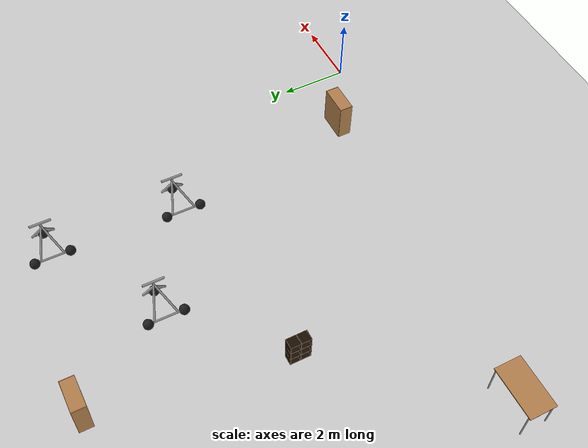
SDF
<sdf version="1.6">
 <world name="default">
  <model name="ground_plane">
   <static>1</static>
   <link name="link">
    <collision name="collision">
     <geometry><plane><normal>0 0 1</normal><size>100 100</size></plane></geometry>
     <surface><friction><ode><mu>100</mu><mu2>50</mu2></ode></friction></surface>
    </collision>
    <visual name="visual">
     <cast_shadows>0</cast_shadows>
     <geometry><plane><normal>0 0 1</normal><size>100 100</size></plane></geometry>
     <material>
      <script><uri>file://media/materials/scripts/gazebo.material</uri><name>Gazebo/Grey</name></script>
     </material>
    </visual>
   </link>
  </model>
  <model name="bookshelf">
   <static>1</static>
   <link name="link">
    <inertial><mass>1</mass></inertial>
    <collision name="back">
     <pose>0 0.005 0.6 0 -0 0</pose>
     <geometry><box><size>0.9 0.01 1.2</size></box></geometry>
    </collision>
    <visual name="visual1">
     <pose>0 0.005 0.6 0 -0 0</pose>
     <geometry><box><size>0.9 0.01 1.2</size></box></geometry>
     <material>
      <script><uri>file://media/materials/scripts/gazebo.material</uri><name>Gazebo/Wood</name></script>
     </material>
    </visual>
    <collision name="left_side">
     <pose>0.45 -0.195 0.6 0 -0 0</pose>
     <geometry><box><size>0.02 0.4 1.2</size></box></geometry>
    </collision>
    <visual name="visual2">
     <pose>0.45 -0.195 0.6 0 -0 0</pose>
     <geometry><box><size>0.02 0.4 1.2</size></box></geometry>
     <material>
      <script><uri>file://media/materials/scripts/gazebo.material</uri><name>Gazebo/Wood</name></script>
     </material>
    </visual>
    <collision name="right_side">
     <pose>-0.45 -0.195 0.6 0 -0 0</pose>
     <geometry><box><size>0.02 0.4 1.2</size></box></geometry>
    </collision>
    <visual name="visual3">
     <pose>-0.45 -0.195 0.6 0 -0 0</pose>
     <geometry><box><size>0.02 0.4 1.2</size></box></geometry>
     <material>
      <script><uri>file://media/materials/scripts/gazebo.material</uri><name>Gazebo/Wood</name></script>
     </material>
    </visual>
    <collision name="bottom">
     <pose>0 -0.195 0.03 0 -0 0</pose>
     <geometry><box><size>0.88 0.4 0.06</size></box></geometry>
    </collision>
    <visual name="visual4">
     <pose>0 -0.195 0.03 0 -0 0</pose>
     <geometry><box><size>0.88 0.4 0.06</size></box></geometry>
     <material>
      <script><uri>file://media/materials/scripts/gazebo.material</uri><name>Gazebo/Wood</name></script>
     </material>
    </visual>
    <collision name="top">
     <pose>0 -0.195 1.19 0 -0 0</pose>
     <geometry><box><size>0.88 0.4 0.02</size></box></geometry>
    </collision>
    <visual name="visual5">
     <pose>0 -0.195 1.19 0 -0 0</pose>
     <geometry><box><size>0.88 0.4 0.02</size></box></geometry>
     <material>
      <script><uri>file://media/materials/scripts/gazebo.material</uri><name>Gazebo/Wood</name></script>
     </material>
    </visual>
    <collision name="low_shelf">
     <pose>0 -0.195 0.43 0 -0 0</pose>
     <geometry><box><size>0.88 0.4 0.02</size></box></geometry>
    </collision>
    <visual name="visual6">
     <pose>0 -0.195 0.43 0 -0 0</pose>
     <geometry><box><size>0.88 0.4 0.02</size></box></geometry>
     <material>
      <script><uri>file://media/materials/scripts/gazebo.material</uri><name>Gazebo/Wood</name></script>
     </material>
    </visual>
    <collision name="high_shelf">
     <pose>0 -0.195 0.8 0 -0 0</pose>
     <geometry><box><size>0.88 0.4 0.02</size></box></geometry>
    </collision>
    <visual name="visual7">
     <pose>0 -0.195 0.8 0 -0 0</pose>
     <geometry><box><size>0.88 0.4 0.02</size></box></geometry>
     <material>
      <script><uri>file://media/materials/scripts/gazebo.material</uri><name>Gazebo/Wood</name></script>
     </material>
    </visual>
   </link>
   <pose>-1.95 1.4 0 0 -0 0</pose>
  </model>
  <model name="table_2">
   <static>1</static>
   <link name="link">
    <collision name="surface">
     <pose>0 0 1 0 -0 0</pose>
     <geometry><box><size>1.5 0.8 0.03</size></box></geometry>
     <surface><friction><ode><mu>0.6</mu><mu2>0.6</mu2></ode></friction></surface>
    </collision>
    <visual name="visual1">
     <pose>0 0 1 0 -0 0</pose>
     <geometry><box><size>1.5 0.8 0.03</size></box></geometry>
     <material>
      <script><uri>file://media/materials/scripts/gazebo.material</uri><name>Gazebo/Wood</name></script>
     </material>
    </visual>
    <collision name="front_left_leg">
     <pose>0.68 0.38 0.5 0 -0 0</pose>
     <geometry><cylinder><radius>0.02</radius><length>1</length></cylinder></geometry>
    </collision>
    <visual name="front_left_leg">
     <pose>0.68 0.38 0.5 0 -0 0</pose>
     <geometry><cylinder><radius>0.02</radius><length>1</length></cylinder></geometry>
     <material>
      <script><uri>file://media/materials/scripts/gazebo.material</uri><name>Gazebo/Grey</name></script>
     </material>
    </visual>
    <collision name="front_right_leg">
     <pose>0.68 -0.38 0.5 0 -0 0</pose>
     <geometry><cylinder><radius>0.02</radius><length>1</length></cylinder></geometry>
    </collision>
    <visual name="front_right_leg">
     <pose>0.68 -0.38 0.5 0 -0 0</pose>
     <geometry><cylinder><radius>0.02</radius><length>1</length></cylinder></geometry>
     <material>
      <script><uri>file://media/materials/scripts/gazebo.material</uri><name>Gazebo/Grey</name></script>
     </material>
    </visual>
    <collision name="back_right_leg">
     <pose>-0.68 -0.38 0.5 0 -0 0</pose>
     <geometry><cylinder><radius>0.02</radius><length>1</length></cylinder></geometry>
    </collision>
    <visual name="back_right_leg">
     <pose>-0.68 -0.38 0.5 0 -0 0</pose>
     <geometry><cylinder><radius>0.02</radius><length>1</length></cylinder></geometry>
     <material>
      <script><uri>file://media/materials/scripts/gazebo.material</uri><name>Gazebo/Grey</name></script>
     </material>
    </visual>
    <collision name="back_left_leg">
     <pose>-0.68 0.38 0.5 0 -0 0</pose>
     <geometry><cylinder><radius>0.02</radius><length>1</length></cylinder></geometry>
    </collision>
    <visual name="back_left_leg">
     <pose>-0.68 0.38 0.5 0 -0 0</pose>
     <geometry><cylinder><radius>0.02</radius><length>1</length></cylinder></geometry>
     <material>
      <script><uri>file://media/materials/scripts/gazebo.material</uri><name>Gazebo/Grey</name></script>
     </material>
    </visual>
   </link>
   <pose>-12.1442 1.69657 0 0 -0 0</pose>
  </model>
  <model name="bookshelf_5">
   <static>1</static>
   <link name="link">
    <inertial><mass>1</mass></inertial>
    <collision name="back">
     <pose>0 0.005 0.6 0 -0 0</pose>
     <geometry><box><size>0.9 0.01 1.2</size></box></geometry>
    </collision>
    <visual name="visual1">
     <pose>0 0.005 0.6 0 -0 0</pose>
     <geometry><box><size>0.9 0.01 1.2</size></box></geometry>
     <material>
      <script><uri>file://media/materials/scripts/gazebo.material</uri><name>Gazebo/Wood</name></script>
     </material>
    </visual>
    <collision name="left_side">
     <pose>0.45 -0.195 0.6 0 -0 0</pose>
     <geometry><box><size>0.02 0.4 1.2</size></box></geometry>
    </collision>
    <visual name="visual2">
     <pose>0.45 -0.195 0.6 0 -0 0</pose>
     <geometry><box><size>0.02 0.4 1.2</size></box></geometry>
     <material>
      <script><uri>file://media/materials/scripts/gazebo.material</uri><name>Gazebo/Wood</name></script>
     </material>
    </visual>
    <collision name="right_side">
     <pose>-0.45 -0.195 0.6 0 -0 0</pose>
     <geometry><box><size>0.02 0.4 1.2</size></box></geometry>
    </collision>
    <visual name="visual3">
     <pose>-0.45 -0.195 0.6 0 -0 0</pose>
     <geometry><box><size>0.02 0.4 1.2</size></box></geometry>
     <material>
      <script><uri>file://media/materials/scripts/gazebo.material</uri><name>Gazebo/Wood</name></script>
     </material>
    </visual>
    <collision name="bottom">
     <pose>0 -0.195 0.03 0 -0 0</pose>
     <geometry><box><size>0.88 0.4 0.06</size></box></geometry>
    </collision>
    <visual name="visual4">
     <pose>0 -0.195 0.03 0 -0 0</pose>
     <geometry><box><size>0.88 0.4 0.06</size></box></geometry>
     <material>
      <script><uri>file://media/materials/scripts/gazebo.material</uri><name>Gazebo/Wood</name></script>
     </material>
    </visual>
    <collision name="top">
     <pose>0 -0.195 1.19 0 -0 0</pose>
     <geometry><box><size>0.88 0.4 0.02</size></box></geometry>
    </collision>
    <visual name="visual5">
     <pose>0 -0.195 1.19 0 -0 0</pose>
     <geometry><box><size>0.88 0.4 0.02</size></box></geometry>
     <material>
      <script><uri>file://media/materials/scripts/gazebo.material</uri><name>Gazebo/Wood</name></script>
     </material>
    </visual>
    <collision name="low_shelf">
     <pose>0 -0.195 0.43 0 -0 0</pose>
     <geometry><box><size>0.88 0.4 0.02</size></box></geometry>
    </collision>
    <visual name="visual6">
     <pose>0 -0.195 0.43 0 -0 0</pose>
     <geometry><box><size>0.88 0.4 0.02</size></box></geometry>
     <material>
      <script><uri>file://media/materials/scripts/gazebo.material</uri><name>Gazebo/Wood</name></script>
     </material>
    </visual>
    <collision name="high_shelf">
     <pose>0 -0.195 0.8 0 -0 0</pose>
     <geometry><box><size>0.88 0.4 0.02</size></box></geometry>
    </collision>
    <visual name="visual7">
     <pose>0 -0.195 0.8 0 -0 0</pose>
     <geometry><box><size>0.88 0.4 0.02</size></box></geometry>
     <material>
      <script><uri>file://media/materials/scripts/gazebo.material</uri><name>Gazebo/Wood</name></script>
     </material>
    </visual>
   </link>
   <pose>-7.5 11.8 0 0 -0 0</pose>
  </model>
  <model name="trisphere_cycle">
   <link name="frame">
    <pose>-0.408559 0 0.385023 0 -0.522021 0</pose>
    <inertial>
     <mass>10</mass>
     <inertia><ixx>0.228</ixx><iyy>0.743521</iyy><izz>0.965521</izz><ixy>0</ixy><ixz>0</ixz><iyz>0</iyz></inertia>
    </inertial>
    <collision name="axle_collision">
     <pose>-0.471335 0 0 1.5708 -0 0</pose>
     <geometry><cylinder><length>1.03923</length><radius>0.03</radius></cylinder></geometry>
    </collision>
    <visual name="axle_visual">
     <pose>-0.471335 0 0 1.5708 -0 0</pose>
     <geometry><cylinder><length>1.03923</length><radius>0.03</radius></cylinder></geometry>
     <material>
      <script><uri>file://media/materials/scripts/gazebo.material</uri><name>Gazebo/Grey</name></script>
     </material>
    </visual>
    <collision name="frame_left_collision">
     <pose>0 0.171552 0 -2.79253 1.57079 3.14159</pose>
     <geometry><cylinder><length>1.00317</length><radius>0.03</radius></cylinder></geometry>
    </collision>
    <visual name="frame_left_visual">
     <pose>0 0.171552 0 -2.79253 1.57079 3.14159</pose>
     <geometry><cylinder><length>1.00317</length><radius>0.03</radius></cylinder></geometry>
     <material>
      <script><uri>file://media/materials/scripts/gazebo.material</uri><name>Gazebo/Grey</name></script>
     </material>
    </visual>
    <collision name="frame_right_collision">
     <pose>0 -0.171552 0 2.79253 1.57079 -3.14159</pose>
     <geometry><cylinder><length>1.00317</length><radius>0.03</radius></cylinder></geometry>
    </collision>
    <visual name="frame_right_visual">
     <pose>0 -0.171552 0 2.79253 1.57079 -3.14159</pose>
     <geometry><cylinder><length>1.00317</length><radius>0.03</radius></cylinder></geometry>
     <material>
      <script><uri>file://media/materials/scripts/gazebo.material</uri><name>Gazebo/Grey</name></script>
     </material>
    </visual>
   </link>
   <link name="fork">
    <pose>0.041441 0 0.385023 0 -0.174533 0</pose>
    <inertial>
     <mass>3</mass>
     <inertia>
      <ixx>0.158203</ixx>
      <iyy>0.0583594</iyy>
      <izz>0.102656</izz>
      <ixy>0</ixy>
      <ixz>0</ixz>
      <iyz>0</iyz>
     </inertia>
    </inertial>
    <collision name="handlebars_collision">
     <pose>0 0 0.397748 1.5708 -0 0</pose>
     <geometry><cylinder><length>0.636396</length><radius>0.0375</radius></cylinder></geometry>
    </collision>
    <visual name="handlebars_visual">
     <pose>0 0 0.397748 1.5708 -0 0</pose>
     <geometry><cylinder><length>0.636396</length><radius>0.0375</radius></cylinder></geometry>
     <material>
      <script><uri>file://media/materials/scripts/gazebo.material</uri><name>Gazebo/Grey</name></script>
     </material>
    </visual>
    <collision name="headtube_collision">
     <pose>0 0 0.238649 0 -0 0</pose>
     <geometry><cylinder><length>0.318198</length><radius>0.0375</radius></cylinder></geometry>
    </collision>
    <visual name="headtube_visual">
     <pose>0 0 0.238649 0 -0 0</pose>
     <geometry><cylinder><length>0.318198</length><radius>0.0375</radius></cylinder></geometry>
     <material>
      <script><uri>file://media/materials/scripts/gazebo.material</uri><name>Gazebo/Grey</name></script>
     </material>
    </visual>
    <collision name="spindle_collision">
     <pose>0 0 -0.238649 1.5708 -0 0</pose>
     <geometry><cylinder><length>0.636396</length><radius>0.015</radius></cylinder></geometry>
    </collision>
    <visual name="spindle_visual">
     <pose>0 0 -0.238649 1.5708 -0 0</pose>
     <geometry><cylinder><length>0.636396</length><radius>0.015</radius></cylinder></geometry>
     <material>
      <script><uri>file://media/materials/scripts/gazebo.material</uri><name>Gazebo/Grey</name></script>
     </material>
    </visual>
    <collision name="fork_left_collision">
     <pose>0 0.159099 -0.07955 0.785398 -0 0</pose>
     <geometry><cylinder><length>0.45</length><radius>0.0375</radius></cylinder></geometry>
    </collision>
    <visual name="fork_left_visual">
     <pose>0 0.159099 -0.07955 0.785398 -0 0</pose>
     <geometry><cylinder><length>0.45</length><radius>0.0375</radius></cylinder></geometry>
     <material>
      <script><uri>file://media/materials/scripts/gazebo.material</uri><name>Gazebo/Grey</name></script>
     </material>
    </visual>
    <collision name="fork_right_collision">
     <pose>0 -0.159099 -0.07955 -0.785398 0 0</pose>
     <geometry><cylinder><length>0.45</length><radius>0.0375</radius></cylinder></geometry>
    </collision>
    <visual name="fork_right_visual">
     <pose>0 -0.159099 -0.07955 -0.785398 0 0</pose>
     <geometry><cylinder><length>0.45</length><radius>0.0375</radius></cylinder></geometry>
     <material>
      <script><uri>file://media/materials/scripts/gazebo.material</uri><name>Gazebo/Grey</name></script>
     </material>
    </visual>
   </link>
   <link name="wheel_front">
    <pose>0.082882 0 0.15 0 -0 0</pose>
    <inertial>
     <mass>0.5</mass>
     <inertia><ixx>0.0045</ixx><iyy>0.0045</iyy><izz>0.0045</izz><ixy>0</ixy><ixz>0</ixz><iyz>0</iyz></inertia>
    </inertial>
    <collision name="collision">
     <geometry><sphere><radius>0.15</radius></sphere></geometry>
     <surface><contact><ode><kp>1e+08</kp><kd>1</kd><min_depth>0.0005</min_depth></ode></contact></surface>
    </collision>
    <visual name="visual">
     <geometry><sphere><radius>0.15</radius></sphere></geometry>
     <material>
      <script><uri>file://media/materials/scripts/gazebo.material</uri><name>Gazebo/Black</name></script>
     </material>
    </visual>
   </link>
   <joint name="wheel_front_steer" type="revolute">
    <parent>frame</parent>
    <child>fork</child>
    <axis>
     <xyz>0 0 1</xyz>
     <limit><lower>-0.959931</lower><upper>0.959931</upper></limit>
     <use_parent_model_frame>0</use_parent_model_frame>
     <dynamics><spring_reference>0</spring_reference><spring_stiffness>0</spring_stiffness></dynamics>
    </axis>
   </joint>
   <joint name="wheel_front_spin" type="revolute">
    <parent>fork</parent>
    <child>wheel_front</child>
    <axis>
     <xyz>0 1 0</xyz>
     <use_parent_model_frame>0</use_parent_model_frame>
     <limit><lower>-1e+16</lower><upper>1e+16</upper></limit>
     <dynamics><spring_reference>0</spring_reference><spring_stiffness>0</spring_stiffness></dynamics>
    </axis>
   </joint>
   <link name="wheel_rear_left">
    <pose>-0.817118 0.519615 0.15 0 -0 0</pose>
    <inertial>
     <mass>0.5</mass>
     <inertia><ixx>0.0045</ixx><iyy>0.0045</iyy><izz>0.0045</izz><ixy>0</ixy><ixz>0</ixz><iyz>0</iyz></inertia>
    </inertial>
    <collision name="collision">
     <geometry><sphere><radius>0.15</radius></sphere></geometry>
     <surface><contact><ode><kp>1e+08</kp><kd>1</kd><min_depth>0.0005</min_depth></ode></contact></surface>
    </collision>
    <visual name="visual">
     <geometry><sphere><radius>0.15</radius></sphere></geometry>
     <material>
      <script><uri>file://media/materials/scripts/gazebo.material</uri><name>Gazebo/Black</name></script>
     </material>
    </visual>
   </link>
   <joint name="wheel_rear_left_spin" type="revolute">
    <parent>frame</parent>
    <child>wheel_rear_left</child>
    <axis>
     <xyz>0 1 0</xyz>
     <use_parent_model_frame>0</use_parent_model_frame>
     <limit><lower>-1e+16</lower><upper>1e+16</upper></limit>
     <dynamics><spring_reference>0</spring_reference><spring_stiffness>0</spring_stiffness></dynamics>
    </axis>
   </joint>
   <link name="wheel_rear_right">
    <pose>-0.817118 -0.519615 0.15 0 -0 0</pose>
    <inertial>
     <mass>0.5</mass>
     <inertia><ixx>0.0045</ixx><iyy>0.0045</iyy><izz>0.0045</izz><ixy>0</ixy><ixz>0</ixz><iyz>0</iyz></inertia>
    </inertial>
    <collision name="collision">
     <geometry><sphere><radius>0.15</radius></sphere></geometry>
     <surface><contact><ode><kp>1e+08</kp><kd>1</kd><min_depth>0.0005</min_depth></ode></contact></surface>
    </collision>
    <visual name="visual">
     <geometry><sphere><radius>0.15</radius></sphere></geometry>
     <material>
      <script><uri>file://media/materials/scripts/gazebo.material</uri><name>Gazebo/Black</name></script>
     </material>
    </visual>
   </link>
   <joint name="wheel_rear_right_spin" type="revolute">
    <parent>frame</parent>
    <child>wheel_rear_right</child>
    <axis>
     <xyz>0 1 0</xyz>
     <use_parent_model_frame>0</use_parent_model_frame>
     <limit><lower>-1e+16</lower><upper>1e+16</upper></limit>
     <dynamics><spring_reference>0</spring_reference><spring_stiffness>0</spring_stiffness></dynamics>
    </axis>
   </joint>
   <pose>-1.99975 10.7733 -0.000501 -0 1e-06 -0.006622</pose>
  </model>
  <model name="trisphere_cycle_0">
   <link name="frame">
    <pose>-0.408559 0 0.385023 0 -0.522021 0</pose>
    <inertial>
     <mass>10</mass>
     <inertia><ixx>0.228</ixx><iyy>0.743521</iyy><izz>0.965521</izz><ixy>0</ixy><ixz>0</ixz><iyz>0</iyz></inertia>
    </inertial>
    <collision name="axle_collision">
     <pose>-0.471335 0 0 1.5708 -0 0</pose>
     <geometry><cylinder><length>1.03923</length><radius>0.03</radius></cylinder></geometry>
    </collision>
    <visual name="axle_visual">
     <pose>-0.471335 0 0 1.5708 -0 0</pose>
     <geometry><cylinder><length>1.03923</length><radius>0.03</radius></cylinder></geometry>
     <material>
      <script><uri>file://media/materials/scripts/gazebo.material</uri><name>Gazebo/Grey</name></script>
     </material>
    </visual>
    <collision name="frame_left_collision">
     <pose>0 0.171552 0 -2.79253 1.57079 3.14159</pose>
     <geometry><cylinder><length>1.00317</length><radius>0.03</radius></cylinder></geometry>
    </collision>
    <visual name="frame_left_visual">
     <pose>0 0.171552 0 -2.79253 1.57079 3.14159</pose>
     <geometry><cylinder><length>1.00317</length><radius>0.03</radius></cylinder></geometry>
     <material>
      <script><uri>file://media/materials/scripts/gazebo.material</uri><name>Gazebo/Grey</name></script>
     </material>
    </visual>
    <collision name="frame_right_collision">
     <pose>0 -0.171552 0 2.79253 1.57079 -3.14159</pose>
     <geometry><cylinder><length>1.00317</length><radius>0.03</radius></cylinder></geometry>
    </collision>
    <visual name="frame_right_visual">
     <pose>0 -0.171552 0 2.79253 1.57079 -3.14159</pose>
     <geometry><cylinder><length>1.00317</length><radius>0.03</radius></cylinder></geometry>
     <material>
      <script><uri>file://media/materials/scripts/gazebo.material</uri><name>Gazebo/Grey</name></script>
     </material>
    </visual>
   </link>
   <link name="fork">
    <pose>0.041441 0 0.385023 0 -0.174533 0</pose>
    <inertial>
     <mass>3</mass>
     <inertia>
      <ixx>0.158203</ixx>
      <iyy>0.0583594</iyy>
      <izz>0.102656</izz>
      <ixy>0</ixy>
      <ixz>0</ixz>
      <iyz>0</iyz>
     </inertia>
    </inertial>
    <collision name="handlebars_collision">
     <pose>0 0 0.397748 1.5708 -0 0</pose>
     <geometry><cylinder><length>0.636396</length><radius>0.0375</radius></cylinder></geometry>
    </collision>
    <visual name="handlebars_visual">
     <pose>0 0 0.397748 1.5708 -0 0</pose>
     <geometry><cylinder><length>0.636396</length><radius>0.0375</radius></cylinder></geometry>
     <material>
      <script><uri>file://media/materials/scripts/gazebo.material</uri><name>Gazebo/Grey</name></script>
     </material>
    </visual>
    <collision name="headtube_collision">
     <pose>0 0 0.238649 0 -0 0</pose>
     <geometry><cylinder><length>0.318198</length><radius>0.0375</radius></cylinder></geometry>
    </collision>
    <visual name="headtube_visual">
     <pose>0 0 0.238649 0 -0 0</pose>
     <geometry><cylinder><length>0.318198</length><radius>0.0375</radius></cylinder></geometry>
     <material>
      <script><uri>file://media/materials/scripts/gazebo.material</uri><name>Gazebo/Grey</name></script>
     </material>
    </visual>
    <collision name="spindle_collision">
     <pose>0 0 -0.238649 1.5708 -0 0</pose>
     <geometry><cylinder><length>0.636396</length><radius>0.015</radius></cylinder></geometry>
    </collision>
    <visual name="spindle_visual">
     <pose>0 0 -0.238649 1.5708 -0 0</pose>
     <geometry><cylinder><length>0.636396</length><radius>0.015</radius></cylinder></geometry>
     <material>
      <script><uri>file://media/materials/scripts/gazebo.material</uri><name>Gazebo/Grey</name></script>
     </material>
    </visual>
    <collision name="fork_left_collision">
     <pose>0 0.159099 -0.07955 0.785398 -0 0</pose>
     <geometry><cylinder><length>0.45</length><radius>0.0375</radius></cylinder></geometry>
    </collision>
    <visual name="fork_left_visual">
     <pose>0 0.159099 -0.07955 0.785398 -0 0</pose>
     <geometry><cylinder><length>0.45</length><radius>0.0375</radius></cylinder></geometry>
     <material>
      <script><uri>file://media/materials/scripts/gazebo.material</uri><name>Gazebo/Grey</name></script>
     </material>
    </visual>
    <collision name="fork_right_collision">
     <pose>0 -0.159099 -0.07955 -0.785398 0 0</pose>
     <geometry><cylinder><length>0.45</length><radius>0.0375</radius></cylinder></geometry>
    </collision>
    <visual name="fork_right_visual">
     <pose>0 -0.159099 -0.07955 -0.785398 0 0</pose>
     <geometry><cylinder><length>0.45</length><radius>0.0375</radius></cylinder></geometry>
     <material>
      <script><uri>file://media/materials/scripts/gazebo.material</uri><name>Gazebo/Grey</name></script>
     </material>
    </visual>
   </link>
   <link name="wheel_front">
    <pose>0.082882 0 0.15 0 -0 0</pose>
    <inertial>
     <mass>0.5</mass>
     <inertia><ixx>0.0045</ixx><iyy>0.0045</iyy><izz>0.0045</izz><ixy>0</ixy><ixz>0</ixz><iyz>0</iyz></inertia>
    </inertial>
    <collision name="collision">
     <geometry><sphere><radius>0.15</radius></sphere></geometry>
     <surface><contact><ode><kp>1e+08</kp><kd>1</kd><min_depth>0.0005</min_depth></ode></contact></surface>
    </collision>
    <visual name="visual">
     <geometry><sphere><radius>0.15</radius></sphere></geometry>
     <material>
      <script><uri>file://media/materials/scripts/gazebo.material</uri><name>Gazebo/Black</name></script>
     </material>
    </visual>
   </link>
   <joint name="wheel_front_steer" type="revolute">
    <parent>frame</parent>
    <child>fork</child>
    <axis>
     <xyz>0 0 1</xyz>
     <limit><lower>-0.959931</lower><upper>0.959931</upper></limit>
     <use_parent_model_frame>0</use_parent_model_frame>
     <dynamics><spring_reference>0</spring_reference><spring_stiffness>0</spring_stiffness></dynamics>
    </axis>
   </joint>
   <joint name="wheel_front_spin" type="revolute">
    <parent>fork</parent>
    <child>wheel_front</child>
    <axis>
     <xyz>0 1 0</xyz>
     <use_parent_model_frame>0</use_parent_model_frame>
     <limit><lower>-1e+16</lower><upper>1e+16</upper></limit>
     <dynamics><spring_reference>0</spring_reference><spring_stiffness>0</spring_stiffness></dynamics>
    </axis>
   </joint>
   <link name="wheel_rear_left">
    <pose>-0.817118 0.519615 0.15 0 -0 0</pose>
    <inertial>
     <mass>0.5</mass>
     <inertia><ixx>0.0045</ixx><iyy>0.0045</iyy><izz>0.0045</izz><ixy>0</ixy><ixz>0</ixz><iyz>0</iyz></inertia>
    </inertial>
    <collision name="collision">
     <geometry><sphere><radius>0.15</radius></sphere></geometry>
     <surface><contact><ode><kp>1e+08</kp><kd>1</kd><min_depth>0.0005</min_depth></ode></contact></surface>
    </collision>
    <visual name="visual">
     <geometry><sphere><radius>0.15</radius></sphere></geometry>
     <material>
      <script><uri>file://media/materials/scripts/gazebo.material</uri><name>Gazebo/Black</name></script>
     </material>
    </visual>
   </link>
   <joint name="wheel_rear_left_spin" type="revolute">
    <parent>frame</parent>
    <child>wheel_rear_left</child>
    <axis>
     <xyz>0 1 0</xyz>
     <use_parent_model_frame>0</use_parent_model_frame>
     <limit><lower>-1e+16</lower><upper>1e+16</upper></limit>
     <dynamics><spring_reference>0</spring_reference><spring_stiffness>0</spring_stiffness></dynamics>
    </axis>
   </joint>
   <link name="wheel_rear_right">
    <pose>-0.817118 -0.519615 0.15 0 -0 0</pose>
    <inertial>
     <mass>0.5</mass>
     <inertia><ixx>0.0045</ixx><iyy>0.0045</iyy><izz>0.0045</izz><ixy>0</ixy><ixz>0</ixz><iyz>0</iyz></inertia>
    </inertial>
    <collision name="collision">
     <geometry><sphere><radius>0.15</radius></sphere></geometry>
     <surface><contact><ode><kp>1e+08</kp><kd>1</kd><min_depth>0.0005</min_depth></ode></contact></surface>
    </collision>
    <visual name="visual">
     <geometry><sphere><radius>0.15</radius></sphere></geometry>
     <material>
      <script><uri>file://media/materials/scripts/gazebo.material</uri><name>Gazebo/Black</name></script>
     </material>
    </visual>
   </link>
   <joint name="wheel_rear_right_spin" type="revolute">
    <parent>frame</parent>
    <child>wheel_rear_right</child>
    <axis>
     <xyz>0 1 0</xyz>
     <use_parent_model_frame>0</use_parent_model_frame>
     <limit><lower>-1e+16</lower><upper>1e+16</upper></limit>
     <dynamics><spring_reference>0</spring_reference><spring_stiffness>0</spring_stiffness></dynamics>
    </axis>
   </joint>
   <pose>-2.15617 6.86372 -0.000501 -0 1e-06 -0.006959</pose>
  </model>
  <model name="trisphere_cycle_1">
   <link name="frame">
    <pose>-0.408559 0 0.385023 0 -0.522021 0</pose>
    <inertial>
     <mass>10</mass>
     <inertia><ixx>0.228</ixx><iyy>0.743521</iyy><izz>0.965521</izz><ixy>0</ixy><ixz>0</ixz><iyz>0</iyz></inertia>
    </inertial>
    <collision name="axle_collision">
     <pose>-0.471335 0 0 1.5708 -0 0</pose>
     <geometry><cylinder><length>1.03923</length><radius>0.03</radius></cylinder></geometry>
    </collision>
    <visual name="axle_visual">
     <pose>-0.471335 0 0 1.5708 -0 0</pose>
     <geometry><cylinder><length>1.03923</length><radius>0.03</radius></cylinder></geometry>
     <material>
      <script><uri>file://media/materials/scripts/gazebo.material</uri><name>Gazebo/Grey</name></script>
     </material>
    </visual>
    <collision name="frame_left_collision">
     <pose>0 0.171552 0 -2.79253 1.57079 3.14159</pose>
     <geometry><cylinder><length>1.00317</length><radius>0.03</radius></cylinder></geometry>
    </collision>
    <visual name="frame_left_visual">
     <pose>0 0.171552 0 -2.79253 1.57079 3.14159</pose>
     <geometry><cylinder><length>1.00317</length><radius>0.03</radius></cylinder></geometry>
     <material>
      <script><uri>file://media/materials/scripts/gazebo.material</uri><name>Gazebo/Grey</name></script>
     </material>
    </visual>
    <collision name="frame_right_collision">
     <pose>0 -0.171552 0 2.79253 1.57079 -3.14159</pose>
     <geometry><cylinder><length>1.00317</length><radius>0.03</radius></cylinder></geometry>
    </collision>
    <visual name="frame_right_visual">
     <pose>0 -0.171552 0 2.79253 1.57079 -3.14159</pose>
     <geometry><cylinder><length>1.00317</length><radius>0.03</radius></cylinder></geometry>
     <material>
      <script><uri>file://media/materials/scripts/gazebo.material</uri><name>Gazebo/Grey</name></script>
     </material>
    </visual>
   </link>
   <link name="fork">
    <pose>0.041441 0 0.385023 0 -0.174533 0</pose>
    <inertial>
     <mass>3</mass>
     <inertia>
      <ixx>0.158203</ixx>
      <iyy>0.0583594</iyy>
      <izz>0.102656</izz>
      <ixy>0</ixy>
      <ixz>0</ixz>
      <iyz>0</iyz>
     </inertia>
    </inertial>
    <collision name="handlebars_collision">
     <pose>0 0 0.397748 1.5708 -0 0</pose>
     <geometry><cylinder><length>0.636396</length><radius>0.0375</radius></cylinder></geometry>
    </collision>
    <visual name="handlebars_visual">
     <pose>0 0 0.397748 1.5708 -0 0</pose>
     <geometry><cylinder><length>0.636396</length><radius>0.0375</radius></cylinder></geometry>
     <material>
      <script><uri>file://media/materials/scripts/gazebo.material</uri><name>Gazebo/Grey</name></script>
     </material>
    </visual>
    <collision name="headtube_collision">
     <pose>0 0 0.238649 0 -0 0</pose>
     <geometry><cylinder><length>0.318198</length><radius>0.0375</radius></cylinder></geometry>
    </collision>
    <visual name="headtube_visual">
     <pose>0 0 0.238649 0 -0 0</pose>
     <geometry><cylinder><length>0.318198</length><radius>0.0375</radius></cylinder></geometry>
     <material>
      <script><uri>file://media/materials/scripts/gazebo.material</uri><name>Gazebo/Grey</name></script>
     </material>
    </visual>
    <collision name="spindle_collision">
     <pose>0 0 -0.238649 1.5708 -0 0</pose>
     <geometry><cylinder><length>0.636396</length><radius>0.015</radius></cylinder></geometry>
    </collision>
    <visual name="spindle_visual">
     <pose>0 0 -0.238649 1.5708 -0 0</pose>
     <geometry><cylinder><length>0.636396</length><radius>0.015</radius></cylinder></geometry>
     <material>
      <script><uri>file://media/materials/scripts/gazebo.material</uri><name>Gazebo/Grey</name></script>
     </material>
    </visual>
    <collision name="fork_left_collision">
     <pose>0 0.159099 -0.07955 0.785398 -0 0</pose>
     <geometry><cylinder><length>0.45</length><radius>0.0375</radius></cylinder></geometry>
    </collision>
    <visual name="fork_left_visual">
     <pose>0 0.159099 -0.07955 0.785398 -0 0</pose>
     <geometry><cylinder><length>0.45</length><radius>0.0375</radius></cylinder></geometry>
     <material>
      <script><uri>file://media/materials/scripts/gazebo.material</uri><name>Gazebo/Grey</name></script>
     </material>
    </visual>
    <collision name="fork_right_collision">
     <pose>0 -0.159099 -0.07955 -0.785398 0 0</pose>
     <geometry><cylinder><length>0.45</length><radius>0.0375</radius></cylinder></geometry>
    </collision>
    <visual name="fork_right_visual">
     <pose>0 -0.159099 -0.07955 -0.785398 0 0</pose>
     <geometry><cylinder><length>0.45</length><radius>0.0375</radius></cylinder></geometry>
     <material>
      <script><uri>file://media/materials/scripts/gazebo.material</uri><name>Gazebo/Grey</name></script>
     </material>
    </visual>
   </link>
   <link name="wheel_front">
    <pose>0.082882 0 0.15 0 -0 0</pose>
    <inertial>
     <mass>0.5</mass>
     <inertia><ixx>0.0045</ixx><iyy>0.0045</iyy><izz>0.0045</izz><ixy>0</ixy><ixz>0</ixz><iyz>0</iyz></inertia>
    </inertial>
    <collision name="collision">
     <geometry><sphere><radius>0.15</radius></sphere></geometry>
     <surface><contact><ode><kp>1e+08</kp><kd>1</kd><min_depth>0.0005</min_depth></ode></contact></surface>
    </collision>
    <visual name="visual">
     <geometry><sphere><radius>0.15</radius></sphere></geometry>
     <material>
      <script><uri>file://media/materials/scripts/gazebo.material</uri><name>Gazebo/Black</name></script>
     </material>
    </visual>
   </link>
   <joint name="wheel_front_steer" type="revolute">
    <parent>frame</parent>
    <child>fork</child>
    <axis>
     <xyz>0 0 1</xyz>
     <limit><lower>-0.959931</lower><upper>0.959931</upper></limit>
     <use_parent_model_frame>0</use_parent_model_frame>
     <dynamics><spring_reference>0</spring_reference><spring_stiffness>0</spring_stiffness></dynamics>
    </axis>
   </joint>
   <joint name="wheel_front_spin" type="revolute">
    <parent>fork</parent>
    <child>wheel_front</child>
    <axis>
     <xyz>0 1 0</xyz>
     <use_parent_model_frame>0</use_parent_model_frame>
     <limit><lower>-1e+16</lower><upper>1e+16</upper></limit>
     <dynamics><spring_reference>0</spring_reference><spring_stiffness>0</spring_stiffness></dynamics>
    </axis>
   </joint>
   <link name="wheel_rear_left">
    <pose>-0.817118 0.519615 0.15 0 -0 0</pose>
    <inertial>
     <mass>0.5</mass>
     <inertia><ixx>0.0045</ixx><iyy>0.0045</iyy><izz>0.0045</izz><ixy>0</ixy><ixz>0</ixz><iyz>0</iyz></inertia>
    </inertial>
    <collision name="collision">
     <geometry><sphere><radius>0.15</radius></sphere></geometry>
     <surface><contact><ode><kp>1e+08</kp><kd>1</kd><min_depth>0.0005</min_depth></ode></contact></surface>
    </collision>
    <visual name="visual">
     <geometry><sphere><radius>0.15</radius></sphere></geometry>
     <material>
      <script><uri>file://media/materials/scripts/gazebo.material</uri><name>Gazebo/Black</name></script>
     </material>
    </visual>
   </link>
   <joint name="wheel_rear_left_spin" type="revolute">
    <parent>frame</parent>
    <child>wheel_rear_left</child>
    <axis>
     <xyz>0 1 0</xyz>
     <use_parent_model_frame>0</use_parent_model_frame>
     <limit><lower>-1e+16</lower><upper>1e+16</upper></limit>
     <dynamics><spring_reference>0</spring_reference><spring_stiffness>0</spring_stiffness></dynamics>
    </axis>
   </joint>
   <link name="wheel_rear_right">
    <pose>-0.817118 -0.519615 0.15 0 -0 0</pose>
    <inertial>
     <mass>0.5</mass>
     <inertia><ixx>0.0045</ixx><iyy>0.0045</iyy><izz>0.0045</izz><ixy>0</ixy><ixz>0</ixz><iyz>0</iyz></inertia>
    </inertial>
    <collision name="collision">
     <geometry><sphere><radius>0.15</radius></sphere></geometry>
     <surface><contact><ode><kp>1e+08</kp><kd>1</kd><min_depth>0.0005</min_depth></ode></contact></surface>
    </collision>
    <visual name="visual">
     <geometry><sphere><radius>0.15</radius></sphere></geometry>
     <material>
      <script><uri>file://media/materials/scripts/gazebo.material</uri><name>Gazebo/Black</name></script>
     </material>
    </visual>
   </link>
   <joint name="wheel_rear_right_spin" type="revolute">
    <parent>frame</parent>
    <child>wheel_rear_right</child>
    <axis>
     <xyz>0 1 0</xyz>
     <use_parent_model_frame>0</use_parent_model_frame>
     <limit><lower>-1e+16</lower><upper>1e+16</upper></limit>
     <dynamics><spring_reference>0</spring_reference><spring_stiffness>0</spring_stiffness></dynamics>
    </axis>
   </joint>
   <pose>-5.17402 8.64975 -0.000501 0 1e-06 -0.006926</pose>
  </model>
  <model name="6_Cube_StorageE_0">
   <link name="Wall_0">
    <pose>0 0 0.01 0 -0 0</pose>
    <inertial>
     <mass>1.6201</mass>
     <inertia><ixx>0.0119</ixx><iyy>0.0631</iyy><izz>0.0513</izz><ixy>0</ixy><ixz>0</ixz><iyz>0</iyz></inertia>
    </inertial>
    <collision name="Wall_0_Collision"><geometry><box><size>0.616 0.296 0.02</size></box></geometry></collision>
    <visual name="Wall_0_Visual">
     <geometry><box><size>0.616 0.296 0.02</size></box></geometry>
     <material>
      <script><uri>file://media/materials/scripts/gazebo.material</uri><name>Gazebo/Grey</name></script>
      <ambient>0.105882 0.0509804 0 1</ambient>
     </material>
    </visual>
   </link>
   <joint name="0_2" type="fixed">
    <pose>-0.308 0 0 0 -0 0</pose>
    <parent>Wall_2</parent>
    <child>Wall_0</child>
    <axis>
     <xyz>1 0 0</xyz>
     <use_parent_model_frame>0</use_parent_model_frame>
     <limit><lower>-1e+16</lower><upper>1e+16</upper></limit>
    </axis>
   </joint>
   <joint name="0_12" type="fixed">
    <parent>Wall_12</parent>
    <child>Wall_0</child>
    <axis>
     <xyz>0 0 1</xyz>
     <use_parent_model_frame>0</use_parent_model_frame>
     <limit><lower>-1e+16</lower><upper>1e+16</upper></limit>
    </axis>
   </joint>
   <joint name="0_4" type="fixed">
    <pose>0.308 0 0 0 -0 0</pose>
    <parent>Wall_4</parent>
    <child>Wall_0</child>
    <axis>
     <xyz>1 0 0</xyz>
     <use_parent_model_frame>0</use_parent_model_frame>
     <limit><lower>-1e+16</lower><upper>1e+16</upper></limit>
    </axis>
   </joint>
   <link name="Wall_10">
    <pose>0 0 0.61 0 -0 0</pose>
    <inertial>
     <mass>1.6201</mass>
     <inertia><ixx>0.0119</ixx><iyy>0.0631</iyy><izz>0.0513</izz><ixy>0</ixy><ixz>0</ixz><iyz>0</iyz></inertia>
    </inertial>
    <collision name="Wall_10_Collision"><geometry><box><size>0.616 0.296 0.02</size></box></geometry></collision>
    <visual name="Wall_10_Visual">
     <geometry><box><size>0.616 0.296 0.02</size></box></geometry>
     <material>
      <script><uri>file://media/materials/scripts/gazebo.material</uri><name>Gazebo/Grey</name></script>
      <ambient>0.105882 0.0509804 0 1</ambient>
     </material>
    </visual>
   </link>
   <joint name="10_2" type="fixed">
    <pose>-0.308 0 0 0 -0 0</pose>
    <parent>Wall_2</parent>
    <child>Wall_10</child>
    <axis>
     <xyz>1 0 0</xyz>
     <use_parent_model_frame>0</use_parent_model_frame>
     <limit><lower>-1e+16</lower><upper>1e+16</upper></limit>
    </axis>
   </joint>
   <joint name="10_12" type="fixed">
    <parent>Wall_12</parent>
    <child>Wall_10</child>
    <axis>
     <xyz>0 0 1</xyz>
     <use_parent_model_frame>0</use_parent_model_frame>
     <limit><lower>-1e+16</lower><upper>1e+16</upper></limit>
    </axis>
   </joint>
   <joint name="10_4" type="fixed">
    <pose>0.308 0 0 0 -0 0</pose>
    <parent>Wall_4</parent>
    <child>Wall_10</child>
    <axis>
     <xyz>1 0 0</xyz>
     <use_parent_model_frame>0</use_parent_model_frame>
     <limit><lower>-1e+16</lower><upper>1e+16</upper></limit>
    </axis>
   </joint>
   <link name="Wall_12">
    <pose>0 0 0.4575 0 -0 0</pose>
    <inertial>
     <mass>2.4065</mass>
     <inertia><ixx>0.0177</ixx><iyy>0.1855</iyy><izz>0.168</izz><ixy>0</ixy><ixz>0</ixz><iyz>0</iyz></inertia>
    </inertial>
    <collision name="Wall_12_Collision"><geometry><box><size>0.02 0.296 0.915</size></box></geometry></collision>
    <visual name="Wall_12_Visual">
     <geometry><box><size>0.02 0.296 0.915</size></box></geometry>
     <material>
      <script><uri>file://media/materials/scripts/gazebo.material</uri><name>Gazebo/Grey</name></script>
      <ambient>0.105882 0.0509804 0 1</ambient>
     </material>
    </visual>
   </link>
   <link name="Wall_2">
    <pose>-0.298 0 0.4575 0 -0 0</pose>
    <inertial>
     <mass>2.4065</mass>
     <inertia><ixx>0.0177</ixx><iyy>0.1855</iyy><izz>0.168</izz><ixy>0</ixy><ixz>0</ixz><iyz>0</iyz></inertia>
    </inertial>
    <collision name="Wall_2_Collision"><geometry><box><size>0.02 0.296 0.915</size></box></geometry></collision>
    <visual name="Wall_2_Visual">
     <geometry><box><size>0.02 0.296 0.915</size></box></geometry>
     <material>
      <script><uri>file://media/materials/scripts/gazebo.material</uri><name>Gazebo/Grey</name></script>
      <ambient>0.105882 0.0509804 0 1</ambient>
     </material>
    </visual>
   </link>
   <link name="Wall_4">
    <pose>0.298 0 0.4575 0 -0 0</pose>
    <inertial>
     <mass>2.4065</mass>
     <inertia><ixx>0.0177</ixx><iyy>0.1855</iyy><izz>0.168</izz><ixy>0</ixy><ixz>0</ixz><iyz>0</iyz></inertia>
    </inertial>
    <collision name="Wall_4_Collision"><geometry><box><size>0.02 0.296 0.915</size></box></geometry></collision>
    <visual name="Wall_4_Visual">
     <geometry><box><size>0.02 0.296 0.915</size></box></geometry>
     <material>
      <script><uri>file://media/materials/scripts/gazebo.material</uri><name>Gazebo/Grey</name></script>
      <ambient>0.105882 0.0509804 0 1</ambient>
     </material>
    </visual>
   </link>
   <link name="Wall_6">
    <pose>0 0 0.905 0 -0 0</pose>
    <inertial>
     <mass>1.6201</mass>
     <inertia><ixx>0.0119</ixx><iyy>0.0631</iyy><izz>0.0513</izz><ixy>0</ixy><ixz>0</ixz><iyz>0</iyz></inertia>
    </inertial>
    <collision name="Wall_6_Collision"><geometry><box><size>0.616 0.296 0.02</size></box></geometry></collision>
    <visual name="Wall_6_Visual">
     <geometry><box><size>0.616 0.296 0.02</size></box></geometry>
     <material>
      <script><uri>file://media/materials/scripts/gazebo.material</uri><name>Gazebo/Grey</name></script>
      <ambient>0.105882 0.0509804 0 1</ambient>
     </material>
    </visual>
   </link>
   <joint name="6_2" type="fixed">
    <pose>-0.308 0 0 0 -0 0</pose>
    <parent>Wall_2</parent>
    <child>Wall_6</child>
    <axis>
     <xyz>2 0 0</xyz>
     <use_parent_model_frame>0</use_parent_model_frame>
     <limit><lower>-1e+16</lower><upper>1e+16</upper></limit>
    </axis>
   </joint>
   <joint name="6_12" type="fixed">
    <parent>Wall_12</parent>
    <child>Wall_6</child>
    <axis>
     <xyz>0 0 1</xyz>
     <use_parent_model_frame>0</use_parent_model_frame>
     <limit><lower>-1e+16</lower><upper>1e+16</upper></limit>
    </axis>
   </joint>
   <joint name="6_4" type="fixed">
    <pose>0.308 0 0 0 -0 0</pose>
    <parent>Wall_4</parent>
    <child>Wall_6</child>
    <axis>
     <xyz>1 0 0</xyz>
     <use_parent_model_frame>0</use_parent_model_frame>
     <limit><lower>-1e+16</lower><upper>1e+16</upper></limit>
    </axis>
   </joint>
   <link name="Wall_8">
    <pose>0 0 0.305 0 -0 0</pose>
    <inertial>
     <mass>1.6201</mass>
     <inertia><ixx>0.0119</ixx><iyy>0.0631</iyy><izz>0.0513</izz><ixy>0</ixy><ixz>0</ixz><iyz>0</iyz></inertia>
    </inertial>
    <collision name="Wall_8_Collision"><geometry><box><size>0.616 0.296 0.02</size></box></geometry></collision>
    <visual name="Wall_8_Visual">
     <geometry><box><size>0.616 0.296 0.02</size></box></geometry>
     <material>
      <script><uri>file://media/materials/scripts/gazebo.material</uri><name>Gazebo/Grey</name></script>
      <ambient>0.105882 0.0509804 0 1</ambient>
     </material>
    </visual>
   </link>
   <joint name="8_2" type="fixed">
    <pose>-0.308 0 0 0 -0 0</pose>
    <parent>Wall_2</parent>
    <child>Wall_8</child>
    <axis>
     <xyz>1 0 0</xyz>
     <use_parent_model_frame>0</use_parent_model_frame>
     <limit><lower>-1e+16</lower><upper>1e+16</upper></limit>
    </axis>
   </joint>
   <joint name="8_12" type="fixed">
    <parent>Wall_12</parent>
    <child>Wall_8</child>
    <axis>
     <xyz>0 0 1</xyz>
     <use_parent_model_frame>0</use_parent_model_frame>
     <limit><lower>-1e+16</lower><upper>1e+16</upper></limit>
    </axis>
   </joint>
   <joint name="8_4" type="fixed">
    <pose>0.308 0 0 0 -0 0</pose>
    <parent>Wall_4</parent>
    <child>Wall_8</child>
    <axis>
     <xyz>1 0 0</xyz>
     <use_parent_model_frame>0</use_parent_model_frame>
     <limit><lower>-1e+16</lower><upper>1e+16</upper></limit>
    </axis>
   </joint>
   <static>1</static>
   <pose>-8.5 6 0 0 -0 1.57098</pose>
  </model>
 </world>
</sdf>
